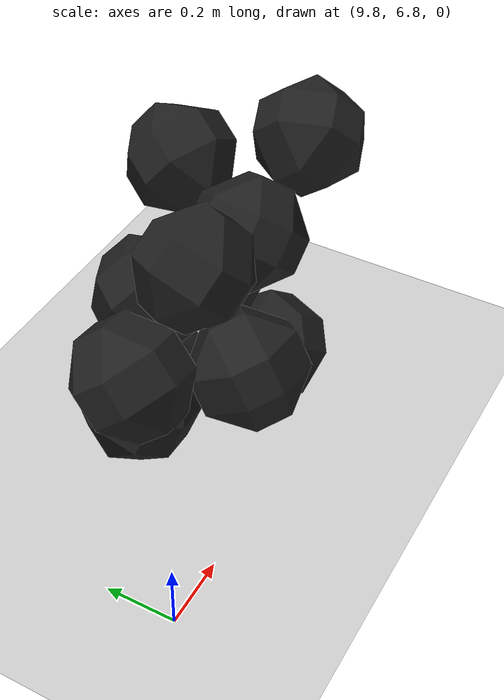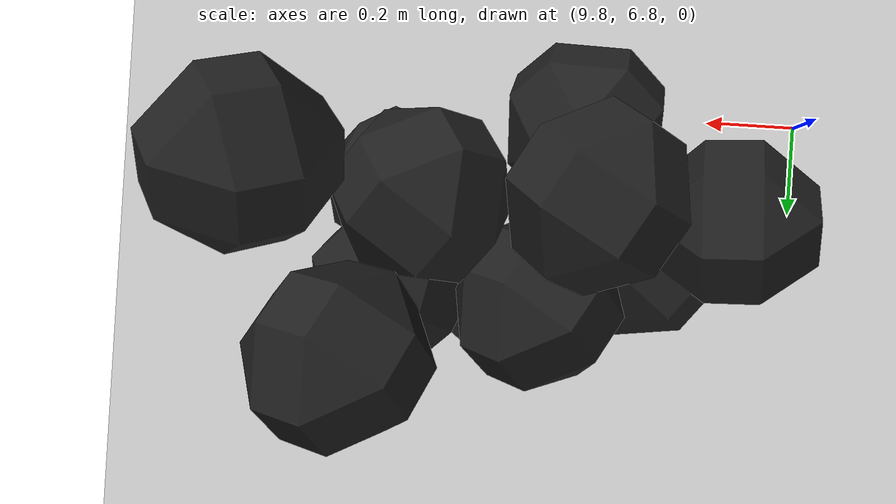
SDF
<sdf version="1.6">
 <world name="default">
  <model name="ground_plane">
   <static>1</static>
   <link name="link">
    <collision name="collision">
     <geometry><plane><normal>0 0 1</normal><size>100 100</size></plane></geometry>
     <surface><friction><ode><mu>100</mu><mu2>50</mu2></ode></friction></surface>
    </collision>
    <visual name="visual">
     <cast_shadows>0</cast_shadows>
     <geometry><plane><normal>0 0 1</normal><size>100 100</size></plane></geometry>
     <material>
      <script><uri>file://media/materials/scripts/gazebo.material</uri><name>Gazebo/Grey</name></script>
     </material>
    </visual>
   </link>
  </model>
  <model name="haoduomiantiaa_7">
   <link name="link_0">
    <inertial>
     <mass>0.2</mass>
     <inertia>
      <ixx>0.166667</ixx>
      <ixy>0</ixy>
      <ixz>0</ixz>
      <iyy>0.166667</iyy>
      <iyz>0</iyz>
      <izz>0.166667</izz>
     </inertia>
    </inertial>
    <visual name="visual">
     <geometry>
      <mesh>
       <uri>/home/oliver/catkin_ws/src/pudong_gazebo/world/stl/haoduomianti.stl</uri>
       <scale>1 1 1</scale>
      </mesh>
     </geometry>
     <material>
      <lighting>1</lighting>
      <script><uri>file://media/materials/scripts/gazebo.material</uri><name>Gazebo/Black</name></script>
      <shader type="pixel"><normal_map>__default__</normal_map></shader>
      <ambient>0.3 0.3 0.3 1</ambient>
      <diffuse>0.7 0.7 0.7 1</diffuse>
      <specular>0.01 0.01 0.01 1</specular>
      <emissive>0 0 0 1</emissive>
     </material>
    </visual>
    <collision name="collision">
     <geometry>
      <mesh>
       <uri>/home/oliver/catkin_ws/src/pudong_gazebo/world/stl/haoduomianti.stl</uri>
       <scale>1 1 1</scale>
      </mesh>
     </geometry>
     <surface>
      <friction>
       <ode><mu>1</mu><mu2>1</mu2><fdir1>0 0 0</fdir1><slip1>0</slip1><slip2>0</slip2></ode>
       <torsional>
        <coefficient>1</coefficient>
        <patch_radius>0</patch_radius>
        <surface_radius>0</surface_radius>
        <use_patch_radius>1</use_patch_radius>
        <ode><slip>0</slip></ode>
       </torsional>
      </friction>
      <bounce><restitution_coefficient>0</restitution_coefficient><threshold>1e+06</threshold></bounce>
      <contact>
       <collide_without_contact>0</collide_without_contact>
       <collide_without_contact_bitmask>1</collide_without_contact_bitmask>
       <collide_bitmask>1</collide_bitmask>
       <ode>
        <soft_cfm>0</soft_cfm>
        <soft_erp>0.2</soft_erp>
        <kp>1e+13</kp>
        <kd>1</kd>
        <max_vel>0.01</max_vel>
        <min_depth>0</min_depth>
       </ode>
       <bullet>
        <split_impulse>1</split_impulse>
        <split_impulse_penetration_threshold>-0.01</split_impulse_penetration_threshold>
        <soft_cfm>0</soft_cfm>
        <soft_erp>0.2</soft_erp>
        <kp>1e+13</kp>
        <kd>1</kd>
       </bullet>
      </contact>
     </surface>
    </collision>
   </link>
   <static>0</static>
   <pose>10.681 6.98654 -0.113364 0.783925 -0.615755 -1.47122</pose>
  </model>
  <model name="haoduomiantiaa_28">
   <link name="link_0">
    <inertial>
     <mass>0.2</mass>
     <inertia>
      <ixx>0.166667</ixx>
      <ixy>0</ixy>
      <ixz>0</ixz>
      <iyy>0.166667</iyy>
      <iyz>0</iyz>
      <izz>0.166667</izz>
     </inertia>
    </inertial>
    <visual name="visual">
     <geometry>
      <mesh>
       <uri>/home/oliver/catkin_ws/src/pudong_gazebo/world/stl/haoduomianti.stl</uri>
       <scale>1 1 1</scale>
      </mesh>
     </geometry>
     <material>
      <lighting>1</lighting>
      <script><uri>file://media/materials/scripts/gazebo.material</uri><name>Gazebo/Black</name></script>
      <shader type="pixel"><normal_map>__default__</normal_map></shader>
      <ambient>0.3 0.3 0.3 1</ambient>
      <diffuse>0.7 0.7 0.7 1</diffuse>
      <specular>0.01 0.01 0.01 1</specular>
      <emissive>0 0 0 1</emissive>
     </material>
    </visual>
    <collision name="collision">
     <geometry>
      <mesh>
       <uri>/home/oliver/catkin_ws/src/pudong_gazebo/world/stl/haoduomianti.stl</uri>
       <scale>1 1 1</scale>
      </mesh>
     </geometry>
     <surface>
      <friction>
       <ode><mu>1</mu><mu2>1</mu2><fdir1>0 0 0</fdir1><slip1>0</slip1><slip2>0</slip2></ode>
       <torsional>
        <coefficient>1</coefficient>
        <patch_radius>0</patch_radius>
        <surface_radius>0</surface_radius>
        <use_patch_radius>1</use_patch_radius>
        <ode><slip>0</slip></ode>
       </torsional>
      </friction>
      <bounce><restitution_coefficient>0</restitution_coefficient><threshold>1e+06</threshold></bounce>
      <contact>
       <collide_without_contact>0</collide_without_contact>
       <collide_without_contact_bitmask>1</collide_without_contact_bitmask>
       <collide_bitmask>1</collide_bitmask>
       <ode>
        <soft_cfm>0</soft_cfm>
        <soft_erp>0.2</soft_erp>
        <kp>1e+13</kp>
        <kd>1</kd>
        <max_vel>0.01</max_vel>
        <min_depth>0</min_depth>
       </ode>
       <bullet>
        <split_impulse>1</split_impulse>
        <split_impulse_penetration_threshold>-0.01</split_impulse_penetration_threshold>
        <soft_cfm>0</soft_cfm>
        <soft_erp>0.2</soft_erp>
        <kp>1e+13</kp>
        <kd>1</kd>
       </bullet>
      </contact>
     </surface>
    </collision>
   </link>
   <static>0</static>
   <pose>10.4337 7.20582 -0.115272 0.821134 -0.633301 -1.65878</pose>
  </model>
  <model name="haoduomiantiaa_70">
   <link name="link_0">
    <inertial>
     <mass>0.2</mass>
     <inertia>
      <ixx>0.166667</ixx>
      <ixy>0</ixy>
      <ixz>0</ixz>
      <iyy>0.166667</iyy>
      <iyz>0</iyz>
      <izz>0.166667</izz>
     </inertia>
    </inertial>
    <visual name="visual">
     <geometry>
      <mesh>
       <uri>/home/oliver/catkin_ws/src/pudong_gazebo/world/stl/haoduomianti.stl</uri>
       <scale>1 1 1</scale>
      </mesh>
     </geometry>
     <material>
      <lighting>1</lighting>
      <script><uri>file://media/materials/scripts/gazebo.material</uri><name>Gazebo/Black</name></script>
      <shader type="pixel"><normal_map>__default__</normal_map></shader>
      <ambient>0.3 0.3 0.3 1</ambient>
      <diffuse>0.7 0.7 0.7 1</diffuse>
      <specular>0.01 0.01 0.01 1</specular>
      <emissive>0 0 0 1</emissive>
     </material>
    </visual>
    <collision name="collision">
     <geometry>
      <mesh>
       <uri>/home/oliver/catkin_ws/src/pudong_gazebo/world/stl/haoduomianti.stl</uri>
       <scale>1 1 1</scale>
      </mesh>
     </geometry>
     <surface>
      <friction>
       <ode><mu>1</mu><mu2>1</mu2><fdir1>0 0 0</fdir1><slip1>0</slip1><slip2>0</slip2></ode>
       <torsional>
        <coefficient>1</coefficient>
        <patch_radius>0</patch_radius>
        <surface_radius>0</surface_radius>
        <use_patch_radius>1</use_patch_radius>
        <ode><slip>0</slip></ode>
       </torsional>
      </friction>
      <bounce><restitution_coefficient>0</restitution_coefficient><threshold>1e+06</threshold></bounce>
      <contact>
       <collide_without_contact>0</collide_without_contact>
       <collide_without_contact_bitmask>1</collide_without_contact_bitmask>
       <collide_bitmask>1</collide_bitmask>
       <ode>
        <soft_cfm>0</soft_cfm>
        <soft_erp>0.2</soft_erp>
        <kp>1e+13</kp>
        <kd>1</kd>
        <max_vel>0.01</max_vel>
        <min_depth>0</min_depth>
       </ode>
       <bullet>
        <split_impulse>1</split_impulse>
        <split_impulse_penetration_threshold>-0.01</split_impulse_penetration_threshold>
        <soft_cfm>0</soft_cfm>
        <soft_erp>0.2</soft_erp>
        <kp>1e+13</kp>
        <kd>1</kd>
       </bullet>
      </contact>
     </surface>
    </collision>
   </link>
   <static>0</static>
   <pose>10.3129 7.19382 0.081208 1.53171 -1.09715 -0.638564</pose>
  </model>
  <model name="haoduomiantiaa_98">
   <link name="link_0">
    <inertial>
     <mass>0.2</mass>
     <inertia>
      <ixx>0.166667</ixx>
      <ixy>0</ixy>
      <ixz>0</ixz>
      <iyy>0.166667</iyy>
      <iyz>0</iyz>
      <izz>0.166667</izz>
     </inertia>
    </inertial>
    <visual name="visual">
     <geometry>
      <mesh>
       <uri>/home/oliver/catkin_ws/src/pudong_gazebo/world/stl/haoduomianti.stl</uri>
       <scale>1 1 1</scale>
      </mesh>
     </geometry>
     <material>
      <lighting>1</lighting>
      <script><uri>file://media/materials/scripts/gazebo.material</uri><name>Gazebo/Black</name></script>
      <shader type="pixel"><normal_map>__default__</normal_map></shader>
      <ambient>0.3 0.3 0.3 1</ambient>
      <diffuse>0.7 0.7 0.7 1</diffuse>
      <specular>0.01 0.01 0.01 1</specular>
      <emissive>0 0 0 1</emissive>
     </material>
    </visual>
    <collision name="collision">
     <geometry>
      <mesh>
       <uri>/home/oliver/catkin_ws/src/pudong_gazebo/world/stl/haoduomianti.stl</uri>
       <scale>1 1 1</scale>
      </mesh>
     </geometry>
     <surface>
      <friction>
       <ode><mu>1</mu><mu2>1</mu2><fdir1>0 0 0</fdir1><slip1>0</slip1><slip2>0</slip2></ode>
       <torsional>
        <coefficient>1</coefficient>
        <patch_radius>0</patch_radius>
        <surface_radius>0</surface_radius>
        <use_patch_radius>1</use_patch_radius>
        <ode><slip>0</slip></ode>
       </torsional>
      </friction>
      <bounce><restitution_coefficient>0</restitution_coefficient><threshold>1e+06</threshold></bounce>
      <contact>
       <collide_without_contact>0</collide_without_contact>
       <collide_without_contact_bitmask>1</collide_without_contact_bitmask>
       <collide_bitmask>1</collide_bitmask>
       <ode>
        <soft_cfm>0</soft_cfm>
        <soft_erp>0.2</soft_erp>
        <kp>1e+13</kp>
        <kd>1</kd>
        <max_vel>0.01</max_vel>
        <min_depth>0</min_depth>
       </ode>
       <bullet>
        <split_impulse>1</split_impulse>
        <split_impulse_penetration_threshold>-0.01</split_impulse_penetration_threshold>
        <soft_cfm>0</soft_cfm>
        <soft_erp>0.2</soft_erp>
        <kp>1e+13</kp>
        <kd>1</kd>
       </bullet>
      </contact>
     </surface>
    </collision>
   </link>
   <static>0</static>
   <pose>10.2809 6.97033 0.188909 1.08715 -0.310052 -0.724132</pose>
  </model>
  <model name="haoduomiantiaa_99">
   <link name="link_0">
    <inertial>
     <mass>0.2</mass>
     <inertia>
      <ixx>0.166667</ixx>
      <ixy>0</ixy>
      <ixz>0</ixz>
      <iyy>0.166667</iyy>
      <iyz>0</iyz>
      <izz>0.166667</izz>
     </inertia>
    </inertial>
    <visual name="visual">
     <geometry>
      <mesh>
       <uri>/home/oliver/catkin_ws/src/pudong_gazebo/world/stl/haoduomianti.stl</uri>
       <scale>1 1 1</scale>
      </mesh>
     </geometry>
     <material>
      <lighting>1</lighting>
      <script><uri>file://media/materials/scripts/gazebo.material</uri><name>Gazebo/Black</name></script>
      <shader type="pixel"><normal_map>__default__</normal_map></shader>
      <ambient>0.3 0.3 0.3 1</ambient>
      <diffuse>0.7 0.7 0.7 1</diffuse>
      <specular>0.01 0.01 0.01 1</specular>
      <emissive>0 0 0 1</emissive>
     </material>
    </visual>
    <collision name="collision">
     <geometry>
      <mesh>
       <uri>/home/oliver/catkin_ws/src/pudong_gazebo/world/stl/haoduomianti.stl</uri>
       <scale>1 1 1</scale>
      </mesh>
     </geometry>
     <surface>
      <friction>
       <ode><mu>1</mu><mu2>1</mu2><fdir1>0 0 0</fdir1><slip1>0</slip1><slip2>0</slip2></ode>
       <torsional>
        <coefficient>1</coefficient>
        <patch_radius>0</patch_radius>
        <surface_radius>0</surface_radius>
        <use_patch_radius>1</use_patch_radius>
        <ode><slip>0</slip></ode>
       </torsional>
      </friction>
      <bounce><restitution_coefficient>0</restitution_coefficient><threshold>1e+06</threshold></bounce>
      <contact>
       <collide_without_contact>0</collide_without_contact>
       <collide_without_contact_bitmask>1</collide_without_contact_bitmask>
       <collide_bitmask>1</collide_bitmask>
       <ode>
        <soft_cfm>0</soft_cfm>
        <soft_erp>0.2</soft_erp>
        <kp>1e+13</kp>
        <kd>1</kd>
        <max_vel>0.01</max_vel>
        <min_depth>0</min_depth>
       </ode>
       <bullet>
        <split_impulse>1</split_impulse>
        <split_impulse_penetration_threshold>-0.01</split_impulse_penetration_threshold>
        <soft_cfm>0</soft_cfm>
        <soft_erp>0.2</soft_erp>
        <kp>1e+13</kp>
        <kd>1</kd>
       </bullet>
      </contact>
     </surface>
    </collision>
   </link>
   <static>0</static>
   <pose>10.7405 7.22129 0.126209 1.07848 -0.884002 -0.420643</pose>
  </model>
  <model name="haoduomiantiaa_110">
   <link name="link_0">
    <inertial>
     <mass>0.2</mass>
     <inertia>
      <ixx>0.166667</ixx>
      <ixy>0</ixy>
      <ixz>0</ixz>
      <iyy>0.166667</iyy>
      <iyz>0</iyz>
      <izz>0.166667</izz>
     </inertia>
    </inertial>
    <visual name="visual">
     <geometry>
      <mesh>
       <uri>/home/oliver/catkin_ws/src/pudong_gazebo/world/stl/haoduomianti.stl</uri>
       <scale>1 1 1</scale>
      </mesh>
     </geometry>
     <material>
      <lighting>1</lighting>
      <script><uri>file://media/materials/scripts/gazebo.material</uri><name>Gazebo/Black</name></script>
      <shader type="pixel"><normal_map>__default__</normal_map></shader>
      <ambient>0.3 0.3 0.3 1</ambient>
      <diffuse>0.7 0.7 0.7 1</diffuse>
      <specular>0.01 0.01 0.01 1</specular>
      <emissive>0 0 0 1</emissive>
     </material>
    </visual>
    <collision name="collision">
     <geometry>
      <mesh>
       <uri>/home/oliver/catkin_ws/src/pudong_gazebo/world/stl/haoduomianti.stl</uri>
       <scale>1 1 1</scale>
      </mesh>
     </geometry>
     <surface>
      <friction>
       <ode><mu>1</mu><mu2>1</mu2><fdir1>0 0 0</fdir1><slip1>0</slip1><slip2>0</slip2></ode>
       <torsional>
        <coefficient>1</coefficient>
        <patch_radius>0</patch_radius>
        <surface_radius>0</surface_radius>
        <use_patch_radius>1</use_patch_radius>
        <ode><slip>0</slip></ode>
       </torsional>
      </friction>
      <bounce><restitution_coefficient>0</restitution_coefficient><threshold>1e+06</threshold></bounce>
      <contact>
       <collide_without_contact>0</collide_without_contact>
       <collide_without_contact_bitmask>1</collide_without_contact_bitmask>
       <collide_bitmask>1</collide_bitmask>
       <ode>
        <soft_cfm>0</soft_cfm>
        <soft_erp>0.2</soft_erp>
        <kp>1e+13</kp>
        <kd>1</kd>
        <max_vel>0.01</max_vel>
        <min_depth>0</min_depth>
       </ode>
       <bullet>
        <split_impulse>1</split_impulse>
        <split_impulse_penetration_threshold>-0.01</split_impulse_penetration_threshold>
        <soft_cfm>0</soft_cfm>
        <soft_erp>0.2</soft_erp>
        <kp>1e+13</kp>
        <kd>1</kd>
       </bullet>
      </contact>
     </surface>
    </collision>
   </link>
   <static>0</static>
   <pose>10.3305 7.15057 0.235112 0.458497 -0.710522 -0.873152</pose>
  </model>
  <model name="haoduomiantiaa_126">
   <link name="link_0">
    <inertial>
     <mass>0.2</mass>
     <inertia>
      <ixx>0.166667</ixx>
      <ixy>0</ixy>
      <ixz>0</ixz>
      <iyy>0.166667</iyy>
      <iyz>0</iyz>
      <izz>0.166667</izz>
     </inertia>
    </inertial>
    <visual name="visual">
     <geometry>
      <mesh>
       <uri>/home/oliver/catkin_ws/src/pudong_gazebo/world/stl/haoduomianti.stl</uri>
       <scale>1 1 1</scale>
      </mesh>
     </geometry>
     <material>
      <lighting>1</lighting>
      <script><uri>file://media/materials/scripts/gazebo.material</uri><name>Gazebo/Black</name></script>
      <shader type="pixel"><normal_map>__default__</normal_map></shader>
      <ambient>0.3 0.3 0.3 1</ambient>
      <diffuse>0.7 0.7 0.7 1</diffuse>
      <specular>0.01 0.01 0.01 1</specular>
      <emissive>0 0 0 1</emissive>
     </material>
    </visual>
    <collision name="collision">
     <geometry>
      <mesh>
       <uri>/home/oliver/catkin_ws/src/pudong_gazebo/world/stl/haoduomianti.stl</uri>
       <scale>1 1 1</scale>
      </mesh>
     </geometry>
     <surface>
      <friction>
       <ode><mu>1</mu><mu2>1</mu2><fdir1>0 0 0</fdir1><slip1>0</slip1><slip2>0</slip2></ode>
       <torsional>
        <coefficient>1</coefficient>
        <patch_radius>0</patch_radius>
        <surface_radius>0</surface_radius>
        <use_patch_radius>1</use_patch_radius>
        <ode><slip>0</slip></ode>
       </torsional>
      </friction>
      <bounce><restitution_coefficient>0</restitution_coefficient><threshold>1e+06</threshold></bounce>
      <contact>
       <collide_without_contact>0</collide_without_contact>
       <collide_without_contact_bitmask>1</collide_without_contact_bitmask>
       <collide_bitmask>1</collide_bitmask>
       <ode>
        <soft_cfm>0</soft_cfm>
        <soft_erp>0.2</soft_erp>
        <kp>1e+13</kp>
        <kd>1</kd>
        <max_vel>0.01</max_vel>
        <min_depth>0</min_depth>
       </ode>
       <bullet>
        <split_impulse>1</split_impulse>
        <split_impulse_penetration_threshold>-0.01</split_impulse_penetration_threshold>
        <soft_cfm>0</soft_cfm>
        <soft_erp>0.2</soft_erp>
        <kp>1e+13</kp>
        <kd>1</kd>
       </bullet>
      </contact>
     </surface>
    </collision>
   </link>
   <static>0</static>
   <pose>10.639 7.03782 0.358412 0.874809 -0.821964 -0.135686</pose>
  </model>
  <model name="haoduomiantiaa_153">
   <link name="link_0">
    <inertial>
     <mass>0.2</mass>
     <inertia>
      <ixx>0.166667</ixx>
      <ixy>0</ixy>
      <ixz>0</ixz>
      <iyy>0.166667</iyy>
      <iyz>0</iyz>
      <izz>0.166667</izz>
     </inertia>
    </inertial>
    <visual name="visual">
     <geometry>
      <mesh>
       <uri>/home/oliver/catkin_ws/src/pudong_gazebo/world/stl/haoduomianti.stl</uri>
       <scale>1 1 1</scale>
      </mesh>
     </geometry>
     <material>
      <lighting>1</lighting>
      <script><uri>file://media/materials/scripts/gazebo.material</uri><name>Gazebo/Black</name></script>
      <shader type="pixel"><normal_map>__default__</normal_map></shader>
      <ambient>0.3 0.3 0.3 1</ambient>
      <diffuse>0.7 0.7 0.7 1</diffuse>
      <specular>0.01 0.01 0.01 1</specular>
      <emissive>0 0 0 1</emissive>
     </material>
    </visual>
    <collision name="collision">
     <geometry>
      <mesh>
       <uri>/home/oliver/catkin_ws/src/pudong_gazebo/world/stl/haoduomianti.stl</uri>
       <scale>1 1 1</scale>
      </mesh>
     </geometry>
     <surface>
      <friction>
       <ode><mu>1</mu><mu2>1</mu2><fdir1>0 0 0</fdir1><slip1>0</slip1><slip2>0</slip2></ode>
       <torsional>
        <coefficient>1</coefficient>
        <patch_radius>0</patch_radius>
        <surface_radius>0</surface_radius>
        <use_patch_radius>1</use_patch_radius>
        <ode><slip>0</slip></ode>
       </torsional>
      </friction>
      <bounce><restitution_coefficient>0</restitution_coefficient><threshold>1e+06</threshold></bounce>
      <contact>
       <collide_without_contact>0</collide_without_contact>
       <collide_without_contact_bitmask>1</collide_without_contact_bitmask>
       <collide_bitmask>1</collide_bitmask>
       <ode>
        <soft_cfm>0</soft_cfm>
        <soft_erp>0.2</soft_erp>
        <kp>1e+13</kp>
        <kd>1</kd>
        <max_vel>0.01</max_vel>
        <min_depth>0</min_depth>
       </ode>
       <bullet>
        <split_impulse>1</split_impulse>
        <split_impulse_penetration_threshold>-0.01</split_impulse_penetration_threshold>
        <soft_cfm>0</soft_cfm>
        <soft_erp>0.2</soft_erp>
        <kp>1e+13</kp>
        <kd>1</kd>
       </bullet>
      </contact>
     </surface>
    </collision>
   </link>
   <static>0</static>
   <pose>10.1371 7.06259 0.301413 0.291491 -0.838381 1.3917</pose>
  </model>
  <model name="haoduomiantiaa_168">
   <link name="link_0">
    <inertial>
     <mass>0.2</mass>
     <inertia>
      <ixx>0.166667</ixx>
      <ixy>0</ixy>
      <ixz>0</ixz>
      <iyy>0.166667</iyy>
      <iyz>0</iyz>
      <izz>0.166667</izz>
     </inertia>
    </inertial>
    <visual name="visual">
     <geometry>
      <mesh>
       <uri>/home/oliver/catkin_ws/src/pudong_gazebo/world/stl/haoduomianti.stl</uri>
       <scale>1 1 1</scale>
      </mesh>
     </geometry>
     <material>
      <lighting>1</lighting>
      <script><uri>file://media/materials/scripts/gazebo.material</uri><name>Gazebo/Black</name></script>
      <shader type="pixel"><normal_map>__default__</normal_map></shader>
      <ambient>0.3 0.3 0.3 1</ambient>
      <diffuse>0.7 0.7 0.7 1</diffuse>
      <specular>0.01 0.01 0.01 1</specular>
      <emissive>0 0 0 1</emissive>
     </material>
    </visual>
    <collision name="collision">
     <geometry>
      <mesh>
       <uri>/home/oliver/catkin_ws/src/pudong_gazebo/world/stl/haoduomianti.stl</uri>
       <scale>1 1 1</scale>
      </mesh>
     </geometry>
     <surface>
      <friction>
       <ode><mu>1</mu><mu2>1</mu2><fdir1>0 0 0</fdir1><slip1>0</slip1><slip2>0</slip2></ode>
       <torsional>
        <coefficient>1</coefficient>
        <patch_radius>0</patch_radius>
        <surface_radius>0</surface_radius>
        <use_patch_radius>1</use_patch_radius>
        <ode><slip>0</slip></ode>
       </torsional>
      </friction>
      <bounce><restitution_coefficient>0</restitution_coefficient><threshold>1e+06</threshold></bounce>
      <contact>
       <collide_without_contact>0</collide_without_contact>
       <collide_without_contact_bitmask>1</collide_without_contact_bitmask>
       <collide_bitmask>1</collide_bitmask>
       <ode>
        <soft_cfm>0</soft_cfm>
        <soft_erp>0.2</soft_erp>
        <kp>1e+13</kp>
        <kd>1</kd>
        <max_vel>0.01</max_vel>
        <min_depth>0</min_depth>
       </ode>
       <bullet>
        <split_impulse>1</split_impulse>
        <split_impulse_penetration_threshold>-0.01</split_impulse_penetration_threshold>
        <soft_cfm>0</soft_cfm>
        <soft_erp>0.2</soft_erp>
        <kp>1e+13</kp>
        <kd>1</kd>
       </bullet>
      </contact>
     </surface>
    </collision>
   </link>
   <static>0</static>
   <pose>10.7242 7.25102 0.43688 0.788429 -0.83079 -1.08736</pose>
  </model>
  <model name="haoduomiantiaa_170">
   <link name="link_0">
    <inertial>
     <mass>0.2</mass>
     <inertia>
      <ixx>0.166667</ixx>
      <ixy>0</ixy>
      <ixz>0</ixz>
      <iyy>0.166667</iyy>
      <iyz>0</iyz>
      <izz>0.166667</izz>
     </inertia>
    </inertial>
    <visual name="visual">
     <geometry>
      <mesh>
       <uri>/home/oliver/catkin_ws/src/pudong_gazebo/world/stl/haoduomianti.stl</uri>
       <scale>1 1 1</scale>
      </mesh>
     </geometry>
     <material>
      <lighting>1</lighting>
      <script><uri>file://media/materials/scripts/gazebo.material</uri><name>Gazebo/Black</name></script>
      <shader type="pixel"><normal_map>__default__</normal_map></shader>
      <ambient>0.3 0.3 0.3 1</ambient>
      <diffuse>0.7 0.7 0.7 1</diffuse>
      <specular>0.01 0.01 0.01 1</specular>
      <emissive>0 0 0 1</emissive>
     </material>
    </visual>
    <collision name="collision">
     <geometry>
      <mesh>
       <uri>/home/oliver/catkin_ws/src/pudong_gazebo/world/stl/haoduomianti.stl</uri>
       <scale>1 1 1</scale>
      </mesh>
     </geometry>
     <surface>
      <friction>
       <ode><mu>1</mu><mu2>1</mu2><fdir1>0 0 0</fdir1><slip1>0</slip1><slip2>0</slip2></ode>
       <torsional>
        <coefficient>1</coefficient>
        <patch_radius>0</patch_radius>
        <surface_radius>0</surface_radius>
        <use_patch_radius>1</use_patch_radius>
        <ode><slip>0</slip></ode>
       </torsional>
      </friction>
      <bounce><restitution_coefficient>0</restitution_coefficient><threshold>1e+06</threshold></bounce>
      <contact>
       <collide_without_contact>0</collide_without_contact>
       <collide_without_contact_bitmask>1</collide_without_contact_bitmask>
       <collide_bitmask>1</collide_bitmask>
       <ode>
        <soft_cfm>0</soft_cfm>
        <soft_erp>0.2</soft_erp>
        <kp>1e+13</kp>
        <kd>1</kd>
        <max_vel>0.01</max_vel>
        <min_depth>0</min_depth>
       </ode>
       <bullet>
        <split_impulse>1</split_impulse>
        <split_impulse_penetration_threshold>-0.01</split_impulse_penetration_threshold>
        <soft_cfm>0</soft_cfm>
        <soft_erp>0.2</soft_erp>
        <kp>1e+13</kp>
        <kd>1</kd>
       </bullet>
      </contact>
     </surface>
    </collision>
   </link>
   <static>0</static>
   <pose>10.35 7.11546 0.474136 1.36955 -0.790072 -0.385087</pose>
  </model>
  <model name="haoduomiantiaa_198">
   <link name="link_0">
    <inertial>
     <mass>0.2</mass>
     <inertia>
      <ixx>0.166667</ixx>
      <ixy>0</ixy>
      <ixz>0</ixz>
      <iyy>0.166667</iyy>
      <iyz>0</iyz>
      <izz>0.166667</izz>
     </inertia>
    </inertial>
    <visual name="visual">
     <geometry>
      <mesh>
       <uri>/home/oliver/catkin_ws/src/pudong_gazebo/world/stl/haoduomianti.stl</uri>
       <scale>1 1 1</scale>
      </mesh>
     </geometry>
     <material>
      <lighting>1</lighting>
      <script><uri>file://media/materials/scripts/gazebo.material</uri><name>Gazebo/Black</name></script>
      <shader type="pixel"><normal_map>__default__</normal_map></shader>
      <ambient>0.3 0.3 0.3 1</ambient>
      <diffuse>0.7 0.7 0.7 1</diffuse>
      <specular>0.01 0.01 0.01 1</specular>
      <emissive>0 0 0 1</emissive>
     </material>
    </visual>
    <collision name="collision">
     <geometry>
      <mesh>
       <uri>/home/oliver/catkin_ws/src/pudong_gazebo/world/stl/haoduomianti.stl</uri>
       <scale>1 1 1</scale>
      </mesh>
     </geometry>
     <surface>
      <friction>
       <ode><mu>1</mu><mu2>1</mu2><fdir1>0 0 0</fdir1><slip1>0</slip1><slip2>0</slip2></ode>
       <torsional>
        <coefficient>1</coefficient>
        <patch_radius>0</patch_radius>
        <surface_radius>0</surface_radius>
        <use_patch_radius>1</use_patch_radius>
        <ode><slip>0</slip></ode>
       </torsional>
      </friction>
      <bounce><restitution_coefficient>0</restitution_coefficient><threshold>1e+06</threshold></bounce>
      <contact>
       <collide_without_contact>0</collide_without_contact>
       <collide_without_contact_bitmask>1</collide_without_contact_bitmask>
       <collide_bitmask>1</collide_bitmask>
       <ode>
        <soft_cfm>0</soft_cfm>
        <soft_erp>0.2</soft_erp>
        <kp>1e+13</kp>
        <kd>1</kd>
        <max_vel>0.01</max_vel>
        <min_depth>0</min_depth>
       </ode>
       <bullet>
        <split_impulse>1</split_impulse>
        <split_impulse_penetration_threshold>-0.01</split_impulse_penetration_threshold>
        <soft_cfm>0</soft_cfm>
        <soft_erp>0.2</soft_erp>
        <kp>1e+13</kp>
        <kd>1</kd>
       </bullet>
      </contact>
     </surface>
    </collision>
   </link>
   <static>0</static>
   <pose>10.8122 6.97412 0.519514 0.965465 -0.689517 2.29138</pose>
  </model>
 </world>
</sdf>
